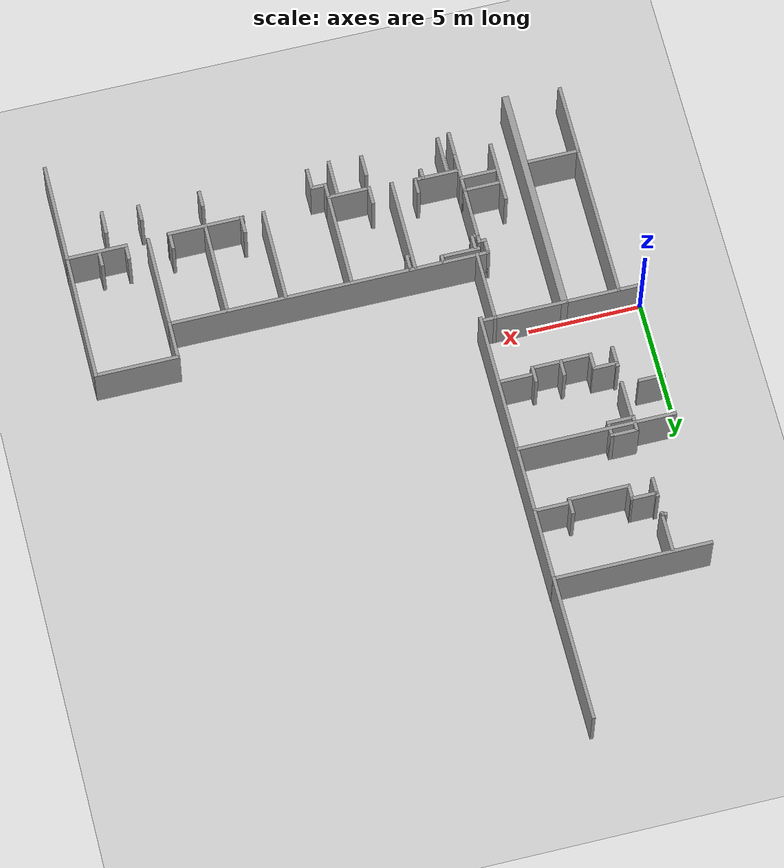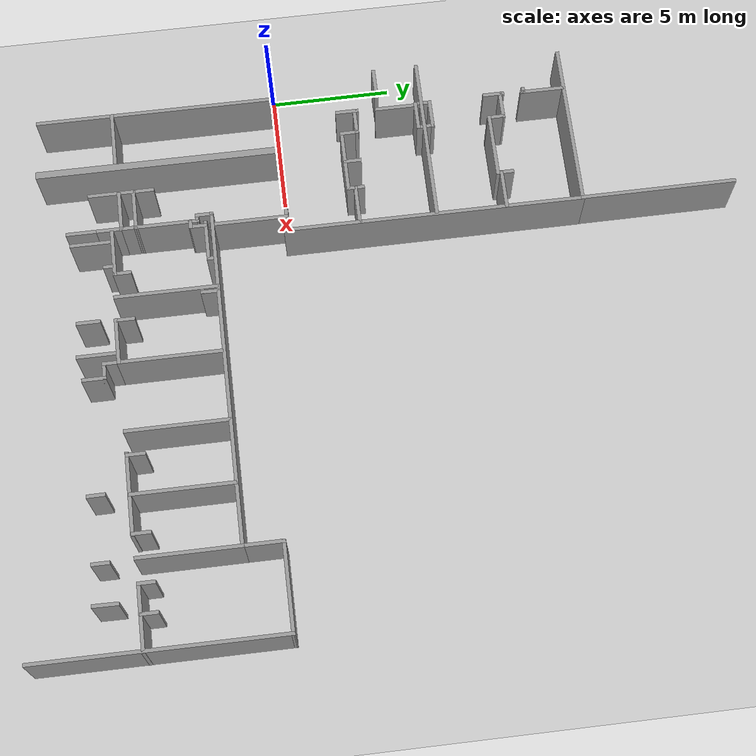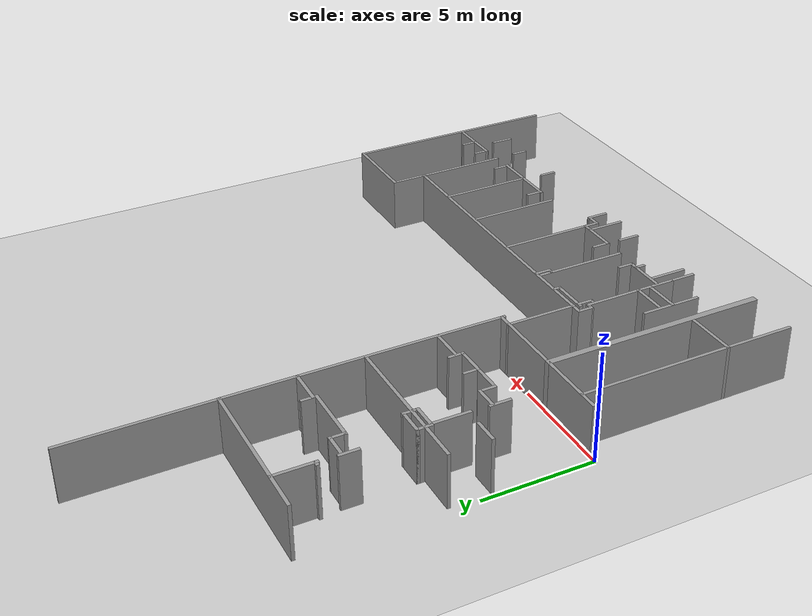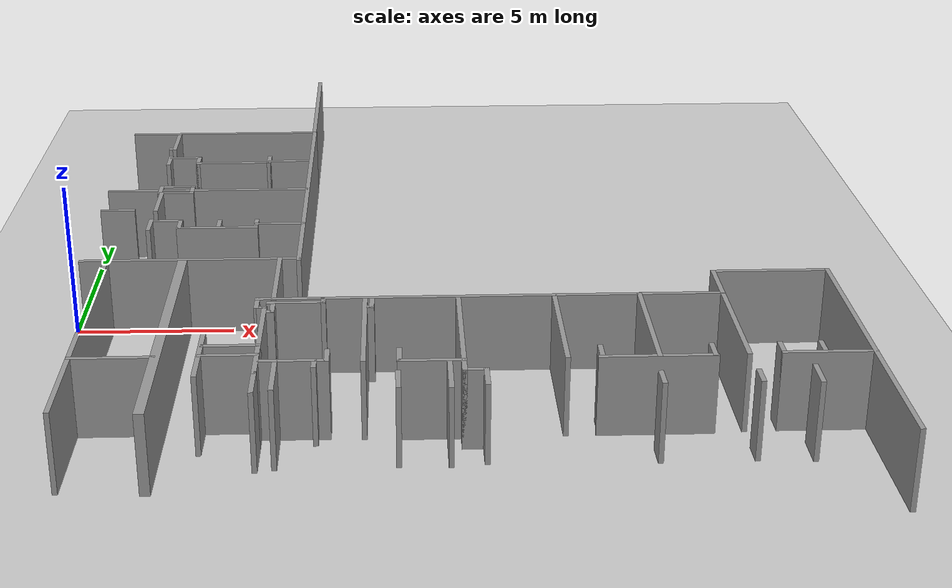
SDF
<sdf version="1.6">
 <world name="default">
  <model name="ground_plane">
   <static>1</static>
   <link name="link">
    <collision name="collision">
     <geometry><plane><normal>0 0 1</normal><size>100 100</size></plane></geometry>
     <surface>
      <contact><collide_bitmask>65535</collide_bitmask></contact>
      <friction><ode><mu>100</mu><mu2>50</mu2></ode></friction>
     </surface>
    </collision>
    <visual name="visual">
     <cast_shadows>0</cast_shadows>
     <geometry><plane><normal>0 0 1</normal><size>100 100</size></plane></geometry>
     <material>
      <script><uri>file://media/materials/scripts/gazebo.material</uri><name>Gazebo/Grey</name></script>
     </material>
    </visual>
   </link>
  </model>
  <model name="harnwell">
   <pose>0.907995 -0.1981 0 0 -0 0</pose>
   <link name="Wall_1">
    <collision name="Wall_1_Collision">
     <geometry><box><size>6.51013 0.15 2.5</size></box></geometry>
     <pose>0 0 1.25 0 -0 0</pose>
    </collision>
    <visual name="Wall_1_Visual">
     <pose>0 0 1.25 0 -0 0</pose>
     <geometry><box><size>6.51013 0.15 2.5</size></box></geometry>
     <material>
      <script><uri>file://media/materials/scripts/gazebo.material</uri><name>Gazebo/Grey</name></script>
      <ambient>1 1 1 1</ambient>
     </material>
     <meta><layer>0</layer></meta>
    </visual>
    <pose>6.27155 15.6669 0 0 -0 -1.56763</pose>
   </link>
   <link name="Wall_101">
    <collision name="Wall_101_Collision">
     <geometry><box><size>0.75 0.15 2.5</size></box></geometry>
     <pose>0 0 1.25 0 -0 0</pose>
    </collision>
    <visual name="Wall_101_Visual">
     <pose>0 0 1.25 0 -0 0</pose>
     <geometry><box><size>0.75 0.15 2.5</size></box></geometry>
     <material>
      <script><uri>file://media/materials/scripts/gazebo.material</uri><name>Gazebo/Grey</name></script>
      <ambient>1 1 1 1</ambient>
     </material>
     <meta><layer>0</layer></meta>
    </visual>
    <pose>1.13146 6.45541 0 0 -0 -1.5708</pose>
   </link>
   <link name="Wall_102">
    <collision name="Wall_102_Collision">
     <geometry><box><size>1.25 0.15 2.5</size></box></geometry>
     <pose>0 0 1.25 0 -0 0</pose>
    </collision>
    <visual name="Wall_102_Visual">
     <pose>0 0 1.25 0 -0 0</pose>
     <geometry><box><size>1.25 0.15 2.5</size></box></geometry>
     <material>
      <script><uri>file://media/materials/scripts/gazebo.material</uri><name>Gazebo/Grey</name></script>
      <ambient>1 1 1 1</ambient>
     </material>
     <meta><layer>0</layer></meta>
    </visual>
    <pose>1.68146 6.15541 0 0 -0 0</pose>
   </link>
   <link name="Wall_103">
    <collision name="Wall_103_Collision">
     <geometry><box><size>0.75 0.15 2.5</size></box></geometry>
     <pose>0 0 1.25 0 -0 0</pose>
    </collision>
    <visual name="Wall_103_Visual">
     <pose>0 0 1.25 0 -0 0</pose>
     <geometry><box><size>0.75 0.15 2.5</size></box></geometry>
     <material>
      <script><uri>file://media/materials/scripts/gazebo.material</uri><name>Gazebo/Grey</name></script>
      <ambient>1 1 1 1</ambient>
     </material>
     <meta><layer>0</layer></meta>
    </visual>
    <pose>2.23146 6.45541 0 0 -0 1.5708</pose>
   </link>
   <link name="Wall_104">
    <collision name="Wall_104_Collision">
     <geometry><box><size>1.25 0.15 2.5</size></box></geometry>
     <pose>0 0 1.25 0 -0 0</pose>
    </collision>
    <visual name="Wall_104_Visual">
     <pose>0 0 1.25 0 -0 0</pose>
     <geometry><box><size>1.25 0.15 2.5</size></box></geometry>
     <material>
      <script><uri>file://media/materials/scripts/gazebo.material</uri><name>Gazebo/Grey</name></script>
      <ambient>1 1 1 1</ambient>
     </material>
     <meta><layer>0</layer></meta>
    </visual>
    <pose>1.68146 6.75541 0 0 -0 3.14159</pose>
   </link>
   <link name="Wall_106">
    <collision name="Wall_106_Collision">
     <geometry><box><size>1.78516 0.15 2.5</size></box></geometry>
     <pose>0 0 1.25 0 -0 0</pose>
    </collision>
    <visual name="Wall_106_Visual">
     <pose>0 0 1.25 0 -0 0</pose>
     <geometry><box><size>1.78516 0.15 2.5</size></box></geometry>
     <material>
      <script><uri>file://media/materials/scripts/gazebo.material</uri><name>Gazebo/Grey</name></script>
      <ambient>1 1 1 1</ambient>
     </material>
     <meta><layer>0</layer></meta>
    </visual>
    <pose>1.19616 5.32615 0 0 -0 1.5708</pose>
   </link>
   <link name="Wall_108">
    <collision name="Wall_108_Collision">
     <geometry><box><size>1.16755 0.15 2.5</size></box></geometry>
     <pose>0 0 1.25 0 -0 0</pose>
    </collision>
    <visual name="Wall_108_Visual">
     <pose>0 0 1.25 0 -0 0</pose>
     <geometry><box><size>1.16755 0.15 2.5</size></box></geometry>
     <material>
      <script><uri>file://media/materials/scripts/gazebo.material</uri><name>Gazebo/Grey</name></script>
      <ambient>1 1 1 1</ambient>
     </material>
     <meta><layer>0</layer></meta>
    </visual>
    <pose>-0.094995 4.57307 0 0 -0 0</pose>
   </link>
   <link name="Wall_116">
    <collision name="Wall_116_Collision">
     <geometry><box><size>0.972551 0.15 2.5</size></box></geometry>
     <pose>0 0 1.25 0 -0 0</pose>
    </collision>
    <visual name="Wall_116_Visual">
     <pose>0 0 1.25 0 -0 0</pose>
     <geometry><box><size>0.972551 0.15 2.5</size></box></geometry>
     <material>
      <script><uri>file://media/materials/scripts/gazebo.material</uri><name>Gazebo/Grey</name></script>
      <ambient>1 1 1 1</ambient>
     </material>
     <meta><layer>0</layer></meta>
    </visual>
    <pose>1.16104 3.2402 0 0 -0 -1.5708</pose>
   </link>
   <link name="Wall_119">
    <collision name="Wall_119_Collision">
     <geometry><box><size>1.12307 0.15 2.5</size></box></geometry>
     <pose>0 0 1.25 0 -0 0</pose>
    </collision>
    <visual name="Wall_119_Visual">
     <pose>0 0 1.25 0 -0 0</pose>
     <geometry><box><size>1.12307 0.15 2.5</size></box></geometry>
     <material>
      <script><uri>file://media/materials/scripts/gazebo.material</uri><name>Gazebo/Grey</name></script>
      <ambient>1 1 1 1</ambient>
     </material>
     <meta><layer>0</layer></meta>
    </visual>
    <pose>1.67379 3.55413 0 0 -0 -0.000113</pose>
   </link>
   <link name="Wall_120">
    <collision name="Wall_120_Collision">
     <geometry><box><size>0.795673 0.15 2.5</size></box></geometry>
     <pose>0 0 1.25 0 -0 0</pose>
    </collision>
    <visual name="Wall_120_Visual">
     <pose>0 0 1.25 0 -0 0</pose>
     <geometry><box><size>0.795673 0.15 2.5</size></box></geometry>
     <material>
      <script><uri>file://media/materials/scripts/gazebo.material</uri><name>Gazebo/Grey</name></script>
      <ambient>1 1 1 1</ambient>
     </material>
     <meta><layer>0</layer></meta>
    </visual>
    <pose>2.16 3.23107 0 0 -0 -1.5708</pose>
   </link>
   <link name="Wall_122">
    <collision name="Wall_122_Collision">
     <geometry><box><size>2.70661 0.15 2.5</size></box></geometry>
     <pose>0 0 1.25 0 -0 0</pose>
    </collision>
    <visual name="Wall_122_Visual">
     <pose>0 0 1.25 0 -0 0</pose>
     <geometry><box><size>2.70661 0.15 2.5</size></box></geometry>
     <material>
      <script><uri>file://media/materials/scripts/gazebo.material</uri><name>Gazebo/Grey</name></script>
      <ambient>1 1 1 1</ambient>
     </material>
     <meta><layer>0</layer></meta>
    </visual>
    <pose>3.43851 2.90807 0 0 -0 0</pose>
   </link>
   <link name="Wall_125">
    <collision name="Wall_125_Collision">
     <geometry><box><size>0.75 0.15 2.5</size></box></geometry>
     <pose>0 0 1.25 0 -0 0</pose>
    </collision>
    <visual name="Wall_125_Visual">
     <pose>0 0 1.25 0 -0 0</pose>
     <geometry><box><size>0.75 0.15 2.5</size></box></geometry>
     <material>
      <script><uri>file://media/materials/scripts/gazebo.material</uri><name>Gazebo/Grey</name></script>
      <ambient>1 1 1 1</ambient>
     </material>
     <meta><layer>0</layer></meta>
    </visual>
    <pose>4.71701 3.20807 0 0 -0 1.5708</pose>
   </link>
   <link name="Wall_127">
    <collision name="Wall_127_Collision">
     <geometry><box><size>0.75 0.15 2.5</size></box></geometry>
     <pose>0 0 1.25 0 -0 0</pose>
    </collision>
    <visual name="Wall_127_Visual">
     <pose>0 0 1.25 0 -0 0</pose>
     <geometry><box><size>0.75 0.15 2.5</size></box></geometry>
     <material>
      <script><uri>file://media/materials/scripts/gazebo.material</uri><name>Gazebo/Grey</name></script>
      <ambient>1 1 1 1</ambient>
     </material>
     <meta><layer>0</layer></meta>
    </visual>
    <pose>3.47391 3.21295 0 0 -0 1.5708</pose>
   </link>
   <link name="Wall_130">
    <collision name="Wall_130_Collision">
     <geometry><box><size>1.69791 0.15 2.5</size></box></geometry>
     <pose>0 0 1.25 0 -0 0</pose>
    </collision>
    <visual name="Wall_130_Visual">
     <pose>0 0 1.25 0 -0 0</pose>
     <geometry><box><size>1.69791 0.15 2.5</size></box></geometry>
     <material>
      <script><uri>file://media/materials/scripts/gazebo.material</uri><name>Gazebo/Grey</name></script>
      <ambient>1 1 1 1</ambient>
     </material>
     <meta><layer>0</layer></meta>
    </visual>
    <pose>5.51702 3.20261 0 0 -0 -3.13874</pose>
   </link>
   <link name="Wall_143">
    <collision name="Wall_143_Collision">
     <geometry><box><size>14.25 0.15 2.5</size></box></geometry>
     <pose>0 0 1.25 0 -0 0</pose>
    </collision>
    <visual name="Wall_143_Visual">
     <pose>0 0 1.25 0 -0 0</pose>
     <geometry><box><size>14.25 0.15 2.5</size></box></geometry>
     <material>
      <script><uri>file://media/materials/scripts/gazebo.material</uri><name>Gazebo/Grey</name></script>
      <ambient>1 1 1 1</ambient>
     </material>
     <meta><layer>0</layer></meta>
    </visual>
    <pose>12.25 -2.82962 0 0 -0 0</pose>
   </link>
   <link name="Wall_144">
    <collision name="Wall_144_Collision">
     <geometry><box><size>1.75 0.15 2.5</size></box></geometry>
     <pose>0 0 1.25 0 -0 0</pose>
    </collision>
    <visual name="Wall_144_Visual">
     <pose>0 0 1.25 0 -0 0</pose>
     <geometry><box><size>1.75 0.15 2.5</size></box></geometry>
     <material>
      <script><uri>file://media/materials/scripts/gazebo.material</uri><name>Gazebo/Grey</name></script>
      <ambient>1 1 1 1</ambient>
     </material>
     <meta><layer>0</layer></meta>
    </visual>
    <pose>19.3 -2.02962 0 0 -0 1.5708</pose>
   </link>
   <link name="Wall_146">
    <collision name="Wall_146_Collision">
     <geometry><box><size>0.75 0.15 2.5</size></box></geometry>
     <pose>0 0 1.25 0 -0 0</pose>
    </collision>
    <visual name="Wall_146_Visual">
     <pose>0 0 1.25 0 -0 0</pose>
     <geometry><box><size>0.75 0.15 2.5</size></box></geometry>
     <material>
      <script><uri>file://media/materials/scripts/gazebo.material</uri><name>Gazebo/Grey</name></script>
      <ambient>1 1 1 1</ambient>
     </material>
     <meta><layer>0</layer></meta>
    </visual>
    <pose>5.19998 -3.12962 0 0 -0 -1.5708</pose>
   </link>
   <link name="Wall_147">
    <collision name="Wall_147_Collision">
     <geometry><box><size>0.394027 0.15 2.5</size></box></geometry>
     <pose>0 0 1.25 0 -0 0</pose>
    </collision>
    <visual name="Wall_147_Visual">
     <pose>0 0 1.25 0 -0 0</pose>
     <geometry><box><size>0.394027 0.15 2.5</size></box></geometry>
     <material>
      <script><uri>file://media/materials/scripts/gazebo.material</uri><name>Gazebo/Grey</name></script>
      <ambient>1 1 1 1</ambient>
     </material>
     <meta><layer>0</layer></meta>
    </visual>
    <pose>5.32199 -3.42977 0 0 -0 -0.00125</pose>
   </link>
   <link name="Wall_150">
    <collision name="Wall_150_Collision">
     <geometry><box><size>10.25 0.3 2.5</size></box></geometry>
     <pose>0 0 1.25 0 -0 0</pose>
    </collision>
    <visual name="Wall_150_Visual">
     <pose>0 0 1.25 0 -0 0</pose>
     <geometry><box><size>10.25 0.3 2.5</size></box></geometry>
     <material>
      <script><uri>file://media/materials/scripts/gazebo.material</uri><name>Gazebo/Grey</name></script>
      <ambient>1 1 1 1</ambient>
     </material>
     <meta><layer>0</layer></meta>
    </visual>
    <pose>2.60701 -4.80593 0 0 -0 1.5708</pose>
   </link>
   <link name="Wall_153">
    <collision name="Wall_153_Collision">
     <geometry><box><size>2.75 0.15 2.5</size></box></geometry>
     <pose>0 0 1.25 0 -0 0</pose>
    </collision>
    <visual name="Wall_153_Visual">
     <pose>0 0 1.25 0 -0 0</pose>
     <geometry><box><size>2.75 0.15 2.5</size></box></geometry>
     <material>
      <script><uri>file://media/materials/scripts/gazebo.material</uri><name>Gazebo/Grey</name></script>
      <ambient>1 1 1 1</ambient>
     </material>
     <meta><layer>0</layer></meta>
    </visual>
    <pose>3.8126 -6.4747 0 0 -0 -1.5708</pose>
   </link>
   <link name="Wall_155">
    <collision name="Wall_155_Collision">
     <geometry><box><size>1.75 0.15 2.5</size></box></geometry>
     <pose>0 0 1.25 0 -0 0</pose>
    </collision>
    <visual name="Wall_155_Visual">
     <pose>0 0 1.25 0 -0 0</pose>
     <geometry><box><size>1.75 0.15 2.5</size></box></geometry>
     <material>
      <script><uri>file://media/materials/scripts/gazebo.material</uri><name>Gazebo/Grey</name></script>
      <ambient>1 1 1 1</ambient>
     </material>
     <meta><layer>0</layer></meta>
    </visual>
    <pose>4.64354 -6.5592 0 0 -0 0</pose>
   </link>
   <link name="Wall_156">
    <collision name="Wall_156_Collision">
     <geometry><box><size>0.75 0.15 2.5</size></box></geometry>
     <pose>0 0 1.25 0 -0 0</pose>
    </collision>
    <visual name="Wall_156_Visual">
     <pose>0 0 1.25 0 -0 0</pose>
     <geometry><box><size>0.75 0.15 2.5</size></box></geometry>
     <material>
      <script><uri>file://media/materials/scripts/gazebo.material</uri><name>Gazebo/Grey</name></script>
      <ambient>1 1 1 1</ambient>
     </material>
     <meta><layer>0</layer></meta>
    </visual>
    <pose>5.44377 -6.25906 0 0 -0 1.57002</pose>
   </link>
   <link name="Wall_157">
    <collision name="Wall_157_Collision">
     <geometry><box><size>1.75 0.15 2.5</size></box></geometry>
     <pose>0 0 1.25 0 -0 0</pose>
    </collision>
    <visual name="Wall_157_Visual">
     <pose>0 0 1.25 0 -0 0</pose>
     <geometry><box><size>1.75 0.15 2.5</size></box></geometry>
     <material>
      <script><uri>file://media/materials/scripts/gazebo.material</uri><name>Gazebo/Grey</name></script>
      <ambient>1 1 1 1</ambient>
     </material>
     <meta><layer>0</layer></meta>
    </visual>
    <pose>4.64377 -5.95906 0 0 -0 -3.14142</pose>
   </link>
   <link name="Wall_159">
    <collision name="Wall_159_Collision">
     <geometry><box><size>2.67942 0.15 2.5</size></box></geometry>
     <pose>0 0 1.25 0 -0 0</pose>
    </collision>
    <visual name="Wall_159_Visual">
     <pose>0 0 1.25 0 -0 0</pose>
     <geometry><box><size>2.67942 0.15 2.5</size></box></geometry>
     <material>
      <script><uri>file://media/materials/scripts/gazebo.material</uri><name>Gazebo/Grey</name></script>
      <ambient>1 1 1 1</ambient>
     </material>
     <meta><layer>0</layer></meta>
    </visual>
    <pose>5.444 -4.69443 0 0 -0 1.5708</pose>
   </link>
   <link name="Wall_161">
    <collision name="Wall_161_Collision">
     <geometry><box><size>1.25 0.15 2.5</size></box></geometry>
     <pose>0 0 1.25 0 -0 0</pose>
    </collision>
    <visual name="Wall_161_Visual">
     <pose>0 0 1.25 0 -0 0</pose>
     <geometry><box><size>1.25 0.15 2.5</size></box></geometry>
     <material>
      <script><uri>file://media/materials/scripts/gazebo.material</uri><name>Gazebo/Grey</name></script>
      <ambient>1 1 1 1</ambient>
     </material>
     <meta><layer>0</layer></meta>
    </visual>
    <pose>5.44354 -7.1092 0 0 -0 -1.5708</pose>
   </link>
   <link name="Wall_162">
    <collision name="Wall_162_Collision">
     <geometry><box><size>1.25 0.15 2.5</size></box></geometry>
     <pose>0 0 1.25 0 -0 0</pose>
    </collision>
    <visual name="Wall_162_Visual">
     <pose>0 0 1.25 0 -0 0</pose>
     <geometry><box><size>1.25 0.15 2.5</size></box></geometry>
     <material>
      <script><uri>file://media/materials/scripts/gazebo.material</uri><name>Gazebo/Grey</name></script>
      <ambient>1 1 1 1</ambient>
     </material>
     <meta><layer>0</layer></meta>
    </visual>
    <pose>5.44354 -8.2092 0 0 -0 -1.5708</pose>
   </link>
   <link name="Wall_171">
    <collision name="Wall_171_Collision">
     <geometry><box><size>0.75 0.15 2.5</size></box></geometry>
     <pose>0 0 1.25 0 -0 0</pose>
    </collision>
    <visual name="Wall_171_Visual">
     <pose>0 0 1.25 0 -0 0</pose>
     <geometry><box><size>0.75 0.15 2.5</size></box></geometry>
     <material>
      <script><uri>file://media/materials/scripts/gazebo.material</uri><name>Gazebo/Grey</name></script>
      <ambient>1 1 1 1</ambient>
     </material>
     <meta><layer>0</layer></meta>
    </visual>
    <pose>7.41354 -6.65701 0 0 -0 -1.5708</pose>
   </link>
   <link name="Wall_172">
    <collision name="Wall_172_Collision">
     <geometry><box><size>2 0.15 2.5</size></box></geometry>
     <pose>0 0 1.25 0 -0 0</pose>
    </collision>
    <visual name="Wall_172_Visual">
     <pose>0 0 1.25 0 -0 0</pose>
     <geometry><box><size>2 0.15 2.5</size></box></geometry>
     <material>
      <script><uri>file://media/materials/scripts/gazebo.material</uri><name>Gazebo/Grey</name></script>
      <ambient>1 1 1 1</ambient>
     </material>
     <meta><layer>0</layer></meta>
    </visual>
    <pose>6.48853 -6.95701 0 0 -0 3.14159</pose>
   </link>
   <link name="Wall_174">
    <collision name="Wall_174_Collision">
     <geometry><box><size>0.5 0.15 2.5</size></box></geometry>
     <pose>0 0 1.25 0 -0 0</pose>
    </collision>
    <visual name="Wall_174_Visual">
     <pose>0 0 1.25 0 -0 0</pose>
     <geometry><box><size>0.5 0.15 2.5</size></box></geometry>
     <material>
      <script><uri>file://media/materials/scripts/gazebo.material</uri><name>Gazebo/Grey</name></script>
      <ambient>1 1 1 1</ambient>
     </material>
     <meta><layer>0</layer></meta>
    </visual>
    <pose>7.06651 -7.15547 0 0 -0 -1.5708</pose>
   </link>
   <link name="Wall_178">
    <collision name="Wall_178_Collision">
     <geometry><box><size>1.75 0.15 2.5</size></box></geometry>
     <pose>0 0 1.25 0 -0 0</pose>
    </collision>
    <visual name="Wall_178_Visual">
     <pose>0 0 1.25 0 -0 0</pose>
     <geometry><box><size>1.75 0.15 2.5</size></box></geometry>
     <material>
      <script><uri>file://media/materials/scripts/gazebo.material</uri><name>Gazebo/Grey</name></script>
      <ambient>1 1 1 1</ambient>
     </material>
     <meta><layer>0</layer></meta>
    </visual>
    <pose>5.97251 -7.83324 0 0 -0 1.5708</pose>
   </link>
   <link name="Wall_183">
    <collision name="Wall_183_Collision">
     <geometry><box><size>0.371226 0.15 2.5</size></box></geometry>
     <pose>0 0 1.25 0 -0 0</pose>
    </collision>
    <visual name="Wall_183_Visual">
     <pose>0 0 1.25 0 -0 0</pose>
     <geometry><box><size>0.371226 0.15 2.5</size></box></geometry>
     <material>
      <script><uri>file://media/materials/scripts/gazebo.material</uri><name>Gazebo/Grey</name></script>
      <ambient>1 1 1 1</ambient>
     </material>
     <meta><layer>0</layer></meta>
    </visual>
    <pose>7.184 -2.99743 0 0 -0 -1.5708</pose>
   </link>
   <link name="Wall_187">
    <collision name="Wall_187_Collision">
     <geometry><box><size>1.769 0.15 2.5</size></box></geometry>
     <pose>0 0 1.25 0 -0 0</pose>
    </collision>
    <visual name="Wall_187_Visual">
     <pose>0 0 1.25 0 -0 0</pose>
     <geometry><box><size>1.769 0.15 2.5</size></box></geometry>
     <material>
      <script><uri>file://media/materials/scripts/gazebo.material</uri><name>Gazebo/Grey</name></script>
      <ambient>1 1 1 1</ambient>
     </material>
     <meta><layer>0</layer></meta>
    </visual>
    <pose>6.36905 -3.10793 0 0 -0 0</pose>
   </link>
   <link name="Wall_190">
    <collision name="Wall_190_Collision">
     <geometry><box><size>0.70688 0.15 2.5</size></box></geometry>
     <pose>0 0 1.25 0 -0 0</pose>
    </collision>
    <visual name="Wall_190_Visual">
     <pose>0 0 1.25 0 -0 0</pose>
     <geometry><box><size>0.70688 0.15 2.5</size></box></geometry>
     <material>
      <script><uri>file://media/materials/scripts/gazebo.material</uri><name>Gazebo/Grey</name></script>
      <ambient>1 1 1 1</ambient>
     </material>
     <meta><layer>0</layer></meta>
    </visual>
    <pose>5.68636 -3.40397 0 0 -0 1.5708</pose>
   </link>
   <link name="Wall_192">
    <collision name="Wall_192_Collision">
     <geometry><box><size>0.355969 0.15 2.5</size></box></geometry>
     <pose>0 0 1.25 0 -0 0</pose>
    </collision>
    <visual name="Wall_192_Visual">
     <pose>0 0 1.25 0 -0 0</pose>
     <geometry><box><size>0.355969 0.15 2.5</size></box></geometry>
     <material>
      <script><uri>file://media/materials/scripts/gazebo.material</uri><name>Gazebo/Grey</name></script>
      <ambient>1 1 1 1</ambient>
     </material>
     <meta><layer>0</layer></meta>
    </visual>
    <pose>5.58101 -3.72593 0 0 -0 0</pose>
   </link>
   <link name="Wall_194">
    <collision name="Wall_194_Collision">
     <geometry><box><size>4.25 0.15 2.5</size></box></geometry>
     <pose>0 0 1.25 0 -0 0</pose>
    </collision>
    <visual name="Wall_194_Visual">
     <pose>0 0 1.25 0 -0 0</pose>
     <geometry><box><size>4.25 0.15 2.5</size></box></geometry>
     <material>
      <script><uri>file://media/materials/scripts/gazebo.material</uri><name>Gazebo/Grey</name></script>
      <ambient>1 1 1 1</ambient>
     </material>
     <meta><layer>0</layer></meta>
    </visual>
    <pose>8.43726 -4.95199 0 0 -0 -1.5708</pose>
   </link>
   <link name="Wall_197">
    <collision name="Wall_197_Collision">
     <geometry><box><size>0.313758 0.15 2.5</size></box></geometry>
     <pose>0 0 1.25 0 -0 0</pose>
    </collision>
    <visual name="Wall_197_Visual">
     <pose>0 0 1.25 0 -0 0</pose>
     <geometry><box><size>0.313758 0.15 2.5</size></box></geometry>
     <material>
      <script><uri>file://media/materials/scripts/gazebo.material</uri><name>Gazebo/Grey</name></script>
      <ambient>1 1 1 1</ambient>
     </material>
     <meta><layer>0</layer></meta>
    </visual>
    <pose>8.5618 -3.47644 0 0 -0 0</pose>
   </link>
   <link name="Wall_198">
    <collision name="Wall_198_Collision">
     <geometry><box><size>0.75 0.15 2.5</size></box></geometry>
     <pose>0 0 1.25 0 -0 0</pose>
    </collision>
    <visual name="Wall_198_Visual">
     <pose>0 0 1.25 0 -0 0</pose>
     <geometry><box><size>0.75 0.15 2.5</size></box></geometry>
     <material>
      <script><uri>file://media/materials/scripts/gazebo.material</uri><name>Gazebo/Grey</name></script>
      <ambient>1 1 1 1</ambient>
     </material>
     <meta><layer>0</layer></meta>
    </visual>
    <pose>8.64368 -3.17644 0 0 -0 1.5708</pose>
   </link>
   <link name="Wall_2">
    <collision name="Wall_2_Collision">
     <geometry><box><size>7 0.15 2.5</size></box></geometry>
     <pose>0 0 1.25 0 -0 0</pose>
    </collision>
    <visual name="Wall_2_Visual">
     <pose>0 0 1.25 0 -0 0</pose>
     <geometry><box><size>7 0.15 2.5</size></box></geometry>
     <material>
      <script><uri>file://media/materials/scripts/gazebo.material</uri><name>Gazebo/Grey</name></script>
      <ambient>1 1 1 1</ambient>
     </material>
     <meta><layer>0</layer></meta>
    </visual>
    <pose>2.86666 12.4868 0 0 -0 3.14159</pose>
   </link>
   <link name="Wall_200">
    <collision name="Wall_200_Collision">
     <geometry><box><size>0.851822 0.15 2.5</size></box></geometry>
     <pose>0 0 1.25 0 -0 0</pose>
    </collision>
    <visual name="Wall_200_Visual">
     <pose>0 0 1.25 0 -0 0</pose>
     <geometry><box><size>0.851822 0.15 2.5</size></box></geometry>
     <material>
      <script><uri>file://media/materials/scripts/gazebo.material</uri><name>Gazebo/Grey</name></script>
      <ambient>1 1 1 1</ambient>
     </material>
     <meta><layer>0</layer></meta>
    </visual>
    <pose>9.449 -6.69593 0 0 -0 -1.5708</pose>
   </link>
   <link name="Wall_202">
    <collision name="Wall_202_Collision">
     <geometry><box><size>1.95254 0.15 2.5</size></box></geometry>
     <pose>0 0 1.25 0 -0 0</pose>
    </collision>
    <visual name="Wall_202_Visual">
     <pose>0 0 1.25 0 -0 0</pose>
     <geometry><box><size>1.95254 0.15 2.5</size></box></geometry>
     <material>
      <script><uri>file://media/materials/scripts/gazebo.material</uri><name>Gazebo/Grey</name></script>
      <ambient>1 1 1 1</ambient>
     </material>
     <meta><layer>0</layer></meta>
    </visual>
    <pose>10.3505 -7.04693 0 0 -0 0</pose>
   </link>
   <link name="Wall_204">
    <collision name="Wall_204_Collision">
     <geometry><box><size>4.25 0.15 2.5</size></box></geometry>
     <pose>0 0 1.25 0 -0 0</pose>
    </collision>
    <visual name="Wall_204_Visual">
     <pose>0 0 1.25 0 -0 0</pose>
     <geometry><box><size>4.25 0.15 2.5</size></box></geometry>
     <material>
      <script><uri>file://media/materials/scripts/gazebo.material</uri><name>Gazebo/Grey</name></script>
      <ambient>1 1 1 1</ambient>
     </material>
     <meta><layer>0</layer></meta>
    </visual>
    <pose>11.252 -4.99693 0 0 -0 1.5708</pose>
   </link>
   <link name="Wall_206">
    <collision name="Wall_206_Collision">
     <geometry><box><size>4.25 0.15 2.5</size></box></geometry>
     <pose>0 0 1.25 0 -0 0</pose>
    </collision>
    <visual name="Wall_206_Visual">
     <pose>0 0 1.25 0 -0 0</pose>
     <geometry><box><size>4.25 0.15 2.5</size></box></geometry>
     <material>
      <script><uri>file://media/materials/scripts/gazebo.material</uri><name>Gazebo/Grey</name></script>
      <ambient>1 1 1 1</ambient>
     </material>
     <meta><layer>0</layer></meta>
    </visual>
    <pose>14.1664 -4.93665 0 0 -0 1.5708</pose>
   </link>
   <link name="Wall_208">
    <collision name="Wall_208_Collision">
     <geometry><box><size>3.421 0.15 2.5</size></box></geometry>
     <pose>0 0 1.25 0 -0 0</pose>
    </collision>
    <visual name="Wall_208_Visual">
     <pose>0 0 1.25 0 -0 0</pose>
     <geometry><box><size>3.421 0.15 2.5</size></box></geometry>
     <material>
      <script><uri>file://media/materials/scripts/gazebo.material</uri><name>Gazebo/Grey</name></script>
      <ambient>1 1 1 1</ambient>
     </material>
     <meta><layer>0</layer></meta>
    </visual>
    <pose>16.7336 -6.99103 0 0 -0 0</pose>
   </link>
   <link name="Wall_210">
    <collision name="Wall_210_Collision">
     <geometry><box><size>4.25 0.15 2.5</size></box></geometry>
     <pose>0 0 1.25 0 -0 0</pose>
    </collision>
    <visual name="Wall_210_Visual">
     <pose>0 0 1.25 0 -0 0</pose>
     <geometry><box><size>4.25 0.15 2.5</size></box></geometry>
     <material>
      <script><uri>file://media/materials/scripts/gazebo.material</uri><name>Gazebo/Grey</name></script>
      <ambient>1 1 1 1</ambient>
     </material>
     <meta><layer>0</layer></meta>
    </visual>
    <pose>16.7589 -4.92211 0 0 -0 1.5708</pose>
   </link>
   <link name="Wall_212">
    <collision name="Wall_212_Collision">
     <geometry><box><size>0.813372 0.15 2.5</size></box></geometry>
     <pose>0 0 1.25 0 -0 0</pose>
    </collision>
    <visual name="Wall_212_Visual">
     <pose>0 0 1.25 0 -0 0</pose>
     <geometry><box><size>0.813372 0.15 2.5</size></box></geometry>
     <material>
      <script><uri>file://media/materials/scripts/gazebo.material</uri><name>Gazebo/Grey</name></script>
      <ambient>1 1 1 1</ambient>
     </material>
     <meta><layer>0</layer></meta>
    </visual>
    <pose>15.153 -6.65243 0 0 -0 -1.5708</pose>
   </link>
   <link name="Wall_214">
    <collision name="Wall_214_Collision">
     <geometry><box><size>0.796146 0.15 2.5</size></box></geometry>
     <pose>0 0 1.25 0 -0 0</pose>
    </collision>
    <visual name="Wall_214_Visual">
     <pose>0 0 1.25 0 -0 0</pose>
     <geometry><box><size>0.796146 0.15 2.5</size></box></geometry>
     <material>
      <script><uri>file://media/materials/scripts/gazebo.material</uri><name>Gazebo/Grey</name></script>
      <ambient>1 1 1 1</ambient>
     </material>
     <meta><layer>0</layer></meta>
    </visual>
    <pose>18.337 -6.64893 0 0 -0 -1.5708</pose>
   </link>
   <link name="Wall_216">
    <collision name="Wall_216_Collision">
     <geometry><box><size>4.25 0.15 2.5</size></box></geometry>
     <pose>0 0 1.25 0 -0 0</pose>
    </collision>
    <visual name="Wall_216_Visual">
     <pose>0 0 1.25 0 -0 0</pose>
     <geometry><box><size>4.25 0.15 2.5</size></box></geometry>
     <material>
      <script><uri>file://media/materials/scripts/gazebo.material</uri><name>Gazebo/Grey</name></script>
      <ambient>1 1 1 1</ambient>
     </material>
     <meta><layer>0</layer></meta>
    </visual>
    <pose>19.3 -4.87962 0 0 -0 -1.5708</pose>
   </link>
   <link name="Wall_218">
    <collision name="Wall_218_Collision">
     <geometry><box><size>3.75 0.15 2.5</size></box></geometry>
     <pose>0 0 1.25 0 -0 0</pose>
    </collision>
    <visual name="Wall_218_Visual">
     <pose>0 0 1.25 0 -0 0</pose>
     <geometry><box><size>3.75 0.15 2.5</size></box></geometry>
     <material>
      <script><uri>file://media/materials/scripts/gazebo.material</uri><name>Gazebo/Grey</name></script>
      <ambient>1 1 1 1</ambient>
     </material>
     <meta><layer>0</layer></meta>
    </visual>
    <pose>21.1 -1.22962 0 0 -0 0</pose>
   </link>
   <link name="Wall_220">
    <collision name="Wall_220_Collision">
     <geometry><box><size>10.25 0.15 2.5</size></box></geometry>
     <pose>0 0 1.25 0 -0 0</pose>
    </collision>
    <visual name="Wall_220_Visual">
     <pose>0 0 1.25 0 -0 0</pose>
     <geometry><box><size>10.25 0.15 2.5</size></box></geometry>
     <material>
      <script><uri>file://media/materials/scripts/gazebo.material</uri><name>Gazebo/Grey</name></script>
      <ambient>1 1 1 1</ambient>
     </material>
     <meta><layer>0</layer></meta>
    </visual>
    <pose>22.8945 -6.27977 0 0 -0 -1.57188</pose>
   </link>
   <link name="Wall_250">
    <collision name="Wall_250_Collision">
     <geometry><box><size>2.5 0.15 2.5</size></box></geometry>
     <pose>0 0 1.25 0 -0 0</pose>
    </collision>
    <visual name="Wall_250_Visual">
     <pose>0 0 1.25 0 -0 0</pose>
     <geometry><box><size>2.5 0.15 2.5</size></box></geometry>
     <material>
      <script><uri>file://media/materials/scripts/gazebo.material</uri><name>Gazebo/Grey</name></script>
      <ambient>1 1 1 1</ambient>
     </material>
     <meta><layer>0</layer></meta>
    </visual>
    <pose>1.36299 -6.61494 0 0 -0 3.14159</pose>
   </link>
   <link name="Wall_251">
    <collision name="Wall_251_Collision">
     <geometry><box><size>3.25 0.15 2.5</size></box></geometry>
     <pose>0 0 1.25 0 -0 0</pose>
    </collision>
    <visual name="Wall_251_Visual">
     <pose>0 0 1.25 0 -0 0</pose>
     <geometry><box><size>3.25 0.15 2.5</size></box></geometry>
     <material>
      <script><uri>file://media/materials/scripts/gazebo.material</uri><name>Gazebo/Grey</name></script>
      <ambient>1 1 1 1</ambient>
     </material>
     <meta><layer>0</layer></meta>
    </visual>
    <pose>0.187991 -8.16494 0 0 -0 -1.5708</pose>
   </link>
   <link name="Wall_254">
    <collision name="Wall_254_Collision">
     <geometry><box><size>7 0.15 2.5</size></box></geometry>
     <pose>0 0 1.25 0 -0 0</pose>
    </collision>
    <visual name="Wall_254_Visual">
     <pose>0 0 1.25 0 -0 0</pose>
     <geometry><box><size>7 0.15 2.5</size></box></geometry>
     <material>
      <script><uri>file://media/materials/scripts/gazebo.material</uri><name>Gazebo/Grey</name></script>
      <ambient>1 1 1 1</ambient>
     </material>
     <meta><layer>0</layer></meta>
    </visual>
    <pose>0.187991 -3.18994 0 0 -0 1.5708</pose>
   </link>
   <link name="Wall_515">
    <collision name="Wall_515_Collision">
     <geometry><box><size>1.751 0.15 2.5</size></box></geometry>
     <pose>0 0 1.25 0 -0 0</pose>
    </collision>
    <visual name="Wall_515_Visual">
     <pose>0 0 1.25 0 -0 0</pose>
     <geometry><box><size>1.751 0.15 2.5</size></box></geometry>
     <material>
      <script><uri>file://media/materials/scripts/gazebo.material</uri><name>Gazebo/Grey</name></script>
      <ambient>1 1 1 1</ambient>
     </material>
     <meta><layer>0</layer></meta>
    </visual>
    <pose>10.854 -7.85343 0 0 -0 1.5708</pose>
   </link>
   <link name="Wall_517">
    <collision name="Wall_517_Collision">
     <geometry><box><size>1 0.15 2.5</size></box></geometry>
     <pose>0 0 1.25 0 -0 0</pose>
    </collision>
    <visual name="Wall_517_Visual">
     <pose>0 0 1.25 0 -0 0</pose>
     <geometry><box><size>1 0.15 2.5</size></box></geometry>
     <material>
      <script><uri>file://media/materials/scripts/gazebo.material</uri><name>Gazebo/Grey</name></script>
      <ambient>1 1 1 1</ambient>
     </material>
     <meta><layer>0</layer></meta>
    </visual>
    <pose>9.41066 -8.15389 0 0 -0 -1.5708</pose>
   </link>
   <link name="Wall_525">
    <collision name="Wall_525_Collision">
     <geometry><box><size>0.75 0.15 2.5</size></box></geometry>
     <pose>0 0 1.25 0 -0 0</pose>
    </collision>
    <visual name="Wall_525_Visual">
     <pose>0 0 1.25 0 -0 0</pose>
     <geometry><box><size>0.75 0.15 2.5</size></box></geometry>
     <material>
      <script><uri>file://media/materials/scripts/gazebo.material</uri><name>Gazebo/Grey</name></script>
      <ambient>1 1 1 1</ambient>
     </material>
     <meta><layer>0</layer></meta>
    </visual>
    <pose>11.252 -7.34693 0 0 -0 -1.5708</pose>
   </link>
   <link name="Wall_526">
    <collision name="Wall_526_Collision">
     <geometry><box><size>0.75 0.15 2.5</size></box></geometry>
     <pose>0 0 1.25 0 -0 0</pose>
    </collision>
    <visual name="Wall_526_Visual">
     <pose>0 0 1.25 0 -0 0</pose>
     <geometry><box><size>0.75 0.15 2.5</size></box></geometry>
     <material>
      <script><uri>file://media/materials/scripts/gazebo.material</uri><name>Gazebo/Grey</name></script>
      <ambient>1 1 1 1</ambient>
     </material>
     <meta><layer>0</layer></meta>
    </visual>
    <pose>11.552 -7.64693 0 0 -0 0</pose>
   </link>
   <link name="Wall_527">
    <collision name="Wall_527_Collision">
     <geometry><box><size>1 0.15 2.5</size></box></geometry>
     <pose>0 0 1.25 0 -0 0</pose>
    </collision>
    <visual name="Wall_527_Visual">
     <pose>0 0 1.25 0 -0 0</pose>
     <geometry><box><size>1 0.15 2.5</size></box></geometry>
     <material>
      <script><uri>file://media/materials/scripts/gazebo.material</uri><name>Gazebo/Grey</name></script>
      <ambient>1 1 1 1</ambient>
     </material>
     <meta><layer>0</layer></meta>
    </visual>
    <pose>11.852 -8.07193 0 0 -0 -1.5708</pose>
   </link>
   <link name="Wall_544">
    <collision name="Wall_544_Collision">
     <geometry><box><size>0.764018 0.15 2.5</size></box></geometry>
     <pose>0 0 1.25 0 -0 0</pose>
    </collision>
    <visual name="Wall_544_Visual">
     <pose>0 0 1.25 0 -0 0</pose>
     <geometry><box><size>0.764018 0.15 2.5</size></box></geometry>
     <material>
      <script><uri>file://media/materials/scripts/gazebo.material</uri><name>Gazebo/Grey</name></script>
      <ambient>1 1 1 1</ambient>
     </material>
     <meta><layer>0</layer></meta>
    </visual>
    <pose>16.6451 -8.29222 0 0 -0 -1.5608</pose>
   </link>
   <link name="Wall_548">
    <collision name="Wall_548_Collision">
     <geometry><box><size>0.75 0.15 2.5</size></box></geometry>
     <pose>0 0 1.25 0 -0 0</pose>
    </collision>
    <visual name="Wall_548_Visual">
     <pose>0 0 1.25 0 -0 0</pose>
     <geometry><box><size>0.75 0.15 2.5</size></box></geometry>
     <material>
      <script><uri>file://media/materials/scripts/gazebo.material</uri><name>Gazebo/Grey</name></script>
      <ambient>1 1 1 1</ambient>
     </material>
     <meta><layer>0</layer></meta>
    </visual>
    <pose>19.3555 -8.27913 0 0 -0 -1.5708</pose>
   </link>
   <link name="Wall_550">
    <collision name="Wall_550_Collision">
     <geometry><box><size>1.06431 0.15 2.5</size></box></geometry>
     <pose>0 0 1.25 0 -0 0</pose>
    </collision>
    <visual name="Wall_550_Visual">
     <pose>0 0 1.25 0 -0 0</pose>
     <geometry><box><size>1.06431 0.15 2.5</size></box></geometry>
     <material>
      <script><uri>file://media/materials/scripts/gazebo.material</uri><name>Gazebo/Grey</name></script>
      <ambient>1 1 1 1</ambient>
     </material>
     <meta><layer>0</layer></meta>
    </visual>
    <pose>20.9757 -8.19682 0 0 -0 -1.58534</pose>
   </link>
   <link name="Wall_552">
    <collision name="Wall_552_Collision">
     <geometry><box><size>0.75 0.15 2.5</size></box></geometry>
     <pose>0 0 1.25 0 -0 0</pose>
    </collision>
    <visual name="Wall_552_Visual">
     <pose>0 0 1.25 0 -0 0</pose>
     <geometry><box><size>0.75 0.15 2.5</size></box></geometry>
     <material>
      <script><uri>file://media/materials/scripts/gazebo.material</uri><name>Gazebo/Grey</name></script>
      <ambient>1 1 1 1</ambient>
     </material>
     <meta><layer>0</layer></meta>
    </visual>
    <pose>20.3009 -6.59448 0 0 -0 -1.5708</pose>
   </link>
   <link name="Wall_553">
    <collision name="Wall_553_Collision">
     <geometry><box><size>2.75 0.15 2.5</size></box></geometry>
     <pose>0 0 1.25 0 -0 0</pose>
    </collision>
    <visual name="Wall_553_Visual">
     <pose>0 0 1.25 0 -0 0</pose>
     <geometry><box><size>2.75 0.15 2.5</size></box></geometry>
     <material>
      <script><uri>file://media/materials/scripts/gazebo.material</uri><name>Gazebo/Grey</name></script>
      <ambient>1 1 1 1</ambient>
     </material>
     <meta><layer>0</layer></meta>
    </visual>
    <pose>21.6009 -6.89448 0 0 -0 0</pose>
   </link>
   <link name="Wall_555">
    <collision name="Wall_555_Collision">
     <geometry><box><size>0.75 0.15 2.5</size></box></geometry>
     <pose>0 0 1.25 0 -0 0</pose>
    </collision>
    <visual name="Wall_555_Visual">
     <pose>0 0 1.25 0 -0 0</pose>
     <geometry><box><size>0.75 0.15 2.5</size></box></geometry>
     <material>
      <script><uri>file://media/materials/scripts/gazebo.material</uri><name>Gazebo/Grey</name></script>
      <ambient>1 1 1 1</ambient>
     </material>
     <meta><layer>0</layer></meta>
    </visual>
    <pose>21.4857 -6.55926 0 0 -0 1.5708</pose>
   </link>
   <link name="Wall_70">
    <collision name="Wall_70_Collision">
     <geometry><box><size>1.91216 0.15 2.5</size></box></geometry>
     <pose>0 0 1.25 0 -0 0</pose>
    </collision>
    <visual name="Wall_70_Visual">
     <pose>0 0 1.25 0 -0 0</pose>
     <geometry><box><size>1.91216 0.15 2.5</size></box></geometry>
     <material>
      <script><uri>file://media/materials/scripts/gazebo.material</uri><name>Gazebo/Grey</name></script>
      <ambient>1 1 1 1</ambient>
     </material>
     <meta><layer>0</layer></meta>
    </visual>
    <pose>1.11114 11.5977 0 0 -0 1.5708</pose>
   </link>
   <link name="Wall_73">
    <collision name="Wall_73_Collision">
     <geometry><box><size>0.254719 0.15 2.5</size></box></geometry>
     <pose>0 0 1.25 0 -0 0</pose>
    </collision>
    <visual name="Wall_73_Visual">
     <pose>0 0 1.25 0 -0 0</pose>
     <geometry><box><size>0.254719 0.15 2.5</size></box></geometry>
     <material>
      <script><uri>file://media/materials/scripts/gazebo.material</uri><name>Gazebo/Grey</name></script>
      <ambient>1 1 1 1</ambient>
     </material>
     <meta><layer>0</layer></meta>
    </visual>
    <pose>1.02725 10.7715 0 0 -0 0</pose>
   </link>
   <link name="Wall_75">
    <collision name="Wall_75_Collision">
     <geometry><box><size>0.901317 0.15 2.5</size></box></geometry>
     <pose>0 0 1.25 0 -0 0</pose>
    </collision>
    <visual name="Wall_75_Visual">
     <pose>0 0 1.25 0 -0 0</pose>
     <geometry><box><size>0.901317 0.15 2.5</size></box></geometry>
     <material>
      <script><uri>file://media/materials/scripts/gazebo.material</uri><name>Gazebo/Grey</name></script>
      <ambient>1 1 1 1</ambient>
     </material>
     <meta><layer>0</layer></meta>
    </visual>
    <pose>1.07601 9.49557 0 0 -0 -1.5708</pose>
   </link>
   <link name="Wall_79">
    <collision name="Wall_79_Collision">
     <geometry><box><size>1.16151 0.15 2.5</size></box></geometry>
     <pose>0 0 1.25 0 -0 0</pose>
    </collision>
    <visual name="Wall_79_Visual">
     <pose>0 0 1.25 0 -0 0</pose>
     <geometry><box><size>1.16151 0.15 2.5</size></box></geometry>
     <material>
      <script><uri>file://media/materials/scripts/gazebo.material</uri><name>Gazebo/Grey</name></script>
      <ambient>1 1 1 1</ambient>
     </material>
     <meta><layer>0</layer></meta>
    </visual>
    <pose>1.63925 9.76532 0 0 -0 3.1411</pose>
   </link>
   <link name="Wall_81">
    <collision name="Wall_81_Collision">
     <geometry><box><size>0.750003 0.15 2.5</size></box></geometry>
     <pose>0 0 1.25 0 -0 0</pose>
    </collision>
    <visual name="Wall_81_Visual">
     <pose>0 0 1.25 0 -0 0</pose>
     <geometry><box><size>0.750003 0.15 2.5</size></box></geometry>
     <material>
      <script><uri>file://media/materials/scripts/gazebo.material</uri><name>Gazebo/Grey</name></script>
      <ambient>1 1 1 1</ambient>
     </material>
     <meta><layer>0</layer></meta>
    </visual>
    <pose>2.145 9.46507 0 0 -0 -1.5708</pose>
   </link>
   <link name="Wall_82">
    <collision name="Wall_82_Collision">
     <geometry><box><size>2.7475 0.15 2.5</size></box></geometry>
     <pose>0 0 1.25 0 -0 0</pose>
    </collision>
    <visual name="Wall_82_Visual">
     <pose>0 0 1.25 0 -0 0</pose>
     <geometry><box><size>2.7475 0.15 2.5</size></box></geometry>
     <material>
      <script><uri>file://media/materials/scripts/gazebo.material</uri><name>Gazebo/Grey</name></script>
      <ambient>1 1 1 1</ambient>
     </material>
     <meta><layer>0</layer></meta>
    </visual>
    <pose>3.44351 9.16507 0 0 -0 0</pose>
   </link>
   <link name="Wall_85">
    <collision name="Wall_85_Collision">
     <geometry><box><size>0.75 0.15 2.5</size></box></geometry>
     <pose>0 0 1.25 0 -0 0</pose>
    </collision>
    <visual name="Wall_85_Visual">
     <pose>0 0 1.25 0 -0 0</pose>
     <geometry><box><size>0.75 0.15 2.5</size></box></geometry>
     <material>
      <script><uri>file://media/materials/scripts/gazebo.material</uri><name>Gazebo/Grey</name></script>
      <ambient>1 1 1 1</ambient>
     </material>
     <meta><layer>0</layer></meta>
    </visual>
    <pose>4.742 9.46507 0 0 -0 1.5708</pose>
   </link>
   <link name="Wall_89">
    <collision name="Wall_89_Collision">
     <geometry><box><size>1.66136 0.15 2.5</size></box></geometry>
     <pose>0 0 1.25 0 -0 0</pose>
    </collision>
    <visual name="Wall_89_Visual">
     <pose>0 0 1.25 0 -0 0</pose>
     <geometry><box><size>1.66136 0.15 2.5</size></box></geometry>
     <material>
      <script><uri>file://media/materials/scripts/gazebo.material</uri><name>Gazebo/Grey</name></script>
      <ambient>1 1 1 1</ambient>
     </material>
     <meta><layer>0</layer></meta>
    </visual>
    <pose>5.52151 9.31407 0 0 -0 3.14159</pose>
   </link>
   <link name="Wall_91">
    <collision name="Wall_91_Collision">
     <geometry><box><size>12.5 0.15 2.5</size></box></geometry>
     <pose>0 0 1.25 0 -0 0</pose>
    </collision>
    <visual name="Wall_91_Visual">
     <pose>0 0 1.25 0 -0 0</pose>
     <geometry><box><size>12.5 0.15 2.5</size></box></geometry>
     <material>
      <script><uri>file://media/materials/scripts/gazebo.material</uri><name>Gazebo/Grey</name></script>
      <ambient>1 1 1 1</ambient>
     </material>
     <meta><layer>0</layer></meta>
    </visual>
    <pose>6.29166 6.31184 0 0 -0 -1.5708</pose>
   </link>
   <link name="Wall_93">
    <collision name="Wall_93_Collision">
     <geometry><box><size>7 0.15 2.5</size></box></geometry>
     <pose>0 0 1.25 0 -0 0</pose>
    </collision>
    <visual name="Wall_93_Visual">
     <pose>0 0 1.25 0 -0 0</pose>
     <geometry><box><size>7 0.15 2.5</size></box></geometry>
     <material>
      <script><uri>file://media/materials/scripts/gazebo.material</uri><name>Gazebo/Grey</name></script>
      <ambient>1 1 1 1</ambient>
     </material>
     <meta><layer>0</layer></meta>
    </visual>
    <pose>2.79367 6.40515 0 0 -0 0</pose>
   </link>
   <link name="Wall_97">
    <collision name="Wall_97_Collision">
     <geometry><box><size>7.0209 0.15 2.5</size></box></geometry>
     <pose>0 0 1.25 0 -0 0</pose>
    </collision>
    <visual name="Wall_97_Visual">
     <pose>0 0 1.25 0 -0 0</pose>
     <geometry><box><size>7.0209 0.15 2.5</size></box></geometry>
     <material>
      <script><uri>file://media/materials/scripts/gazebo.material</uri><name>Gazebo/Grey</name></script>
      <ambient>1 1 1 1</ambient>
     </material>
     <meta><layer>0</layer></meta>
    </visual>
    <pose>2.82789 0.242223 0 0 -0 -0.000687</pose>
   </link>
   <link name="Wall_99">
    <collision name="Wall_99_Collision">
     <geometry><box><size>3.25 0.15 2.5</size></box></geometry>
     <pose>0 0 1.25 0 -0 0</pose>
    </collision>
    <visual name="Wall_99_Visual">
     <pose>0 0 1.25 0 -0 0</pose>
     <geometry><box><size>3.25 0.15 2.5</size></box></geometry>
     <material>
      <script><uri>file://media/materials/scripts/gazebo.material</uri><name>Gazebo/Grey</name></script>
      <ambient>1 1 1 1</ambient>
     </material>
     <meta><layer>0</layer></meta>
    </visual>
    <pose>5.68402 -1.3083 0 0 -0 -1.5708</pose>
   </link>
   <static>1</static>
  </model>
 </world>
</sdf>
